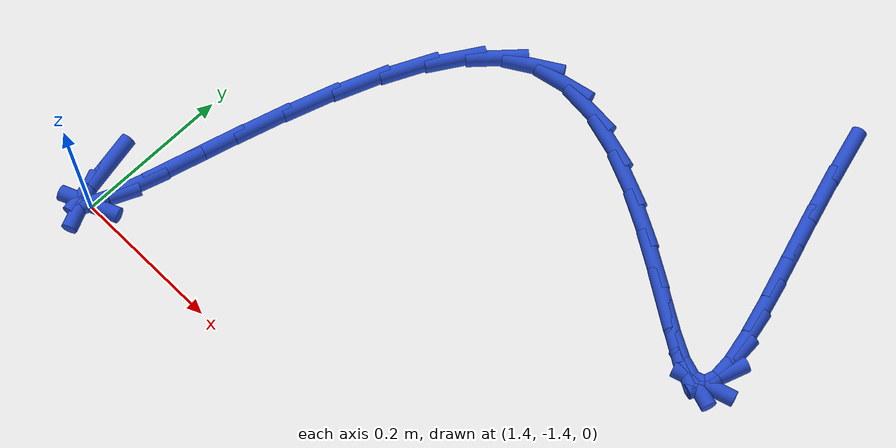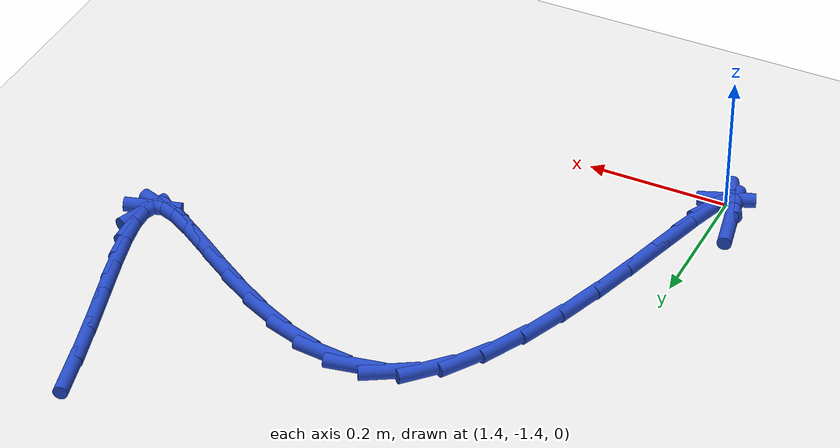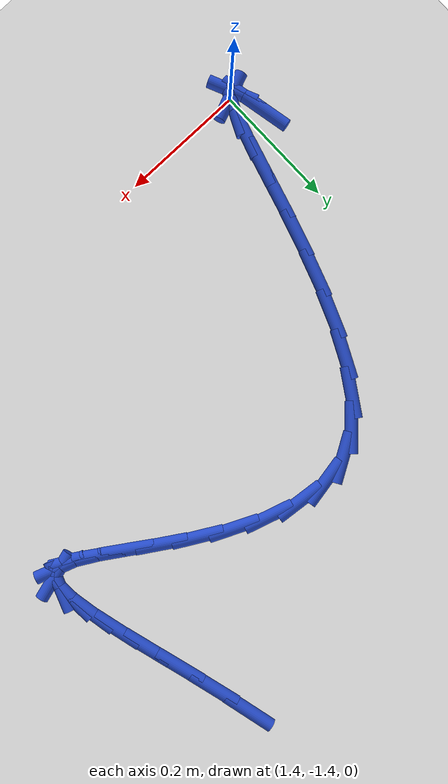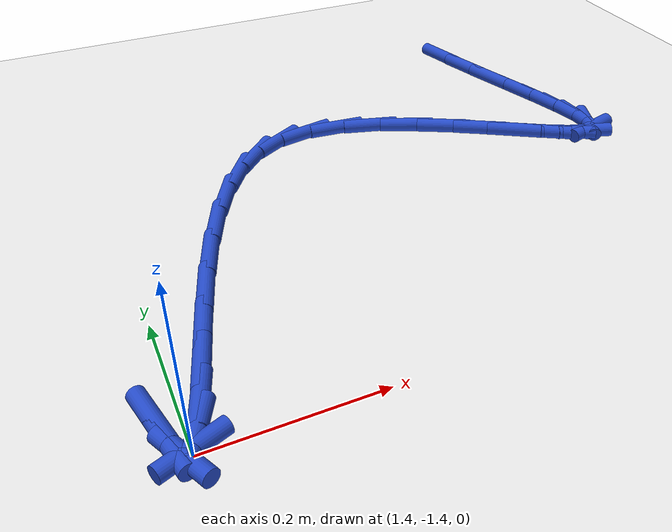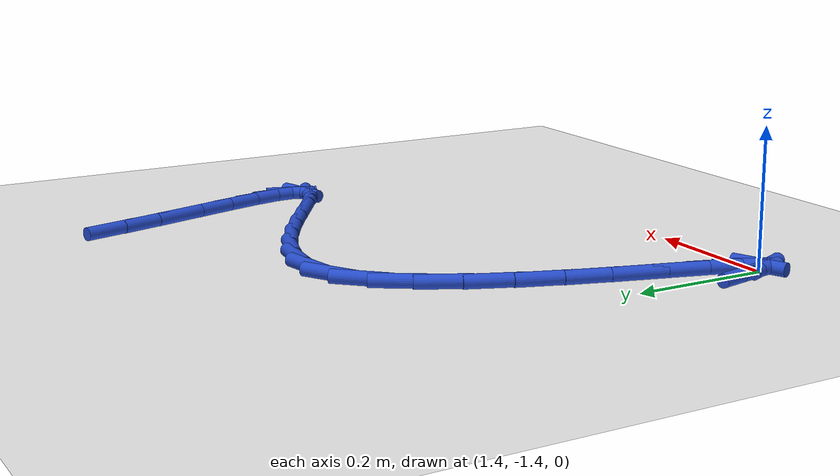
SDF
<sdf version="1.6">
 <world name="default">
  <model name="ground_plane">
   <static>1</static>
   <link name="link">
    <collision name="collision">
     <geometry><plane><normal>0 0 1</normal><size>100 100</size></plane></geometry>
     <surface><friction><ode><mu>100</mu><mu2>50</mu2></ode></friction></surface>
    </collision>
    <visual name="visual">
     <cast_shadows>0</cast_shadows>
     <geometry><plane><normal>0 0 1</normal><size>100 100</size></plane></geometry>
     <material>
      <script><uri>file://media/materials/scripts/gazebo.material</uri><name>Gazebo/WhiteGlow</name></script>
     </material>
    </visual>
   </link>
  </model>
  <model name="line">
   <link name="link_117">
    <pose>2.014001978672659 -0.7013899149735948 0.01 0 1.57 -1.321060853979882</pose>
    <collision name="collision">
     <geometry><cylinder><radius>0.01</radius><length>0.08</length></cylinder></geometry>
    </collision>
    <visual name="visual">
     <material>
      <script><name>Gazebo/Blue</name><uri>file://media/materials/scripts/gazebo.material</uri></script>
     </material>
     <geometry><cylinder><radius>0.01</radius><length>0.08</length></cylinder></geometry>
    </visual>
   </link>
   <link name="link_118">
    <pose>2.029306843724236 -0.7613948357353139 0.01 0 1.57 -1.2960009581818</pose>
    <collision name="collision">
     <geometry><cylinder><radius>0.01</radius><length>0.08</length></cylinder></geometry>
    </collision>
    <visual name="visual">
     <material>
      <script><name>Gazebo/Blue</name><uri>file://media/materials/scripts/gazebo.material</uri></script>
     </material>
     <geometry><cylinder><radius>0.01</radius><length>0.08</length></cylinder></geometry>
    </visual>
   </link>
   <link name="link_119">
    <pose>2.0456630803724347 -0.8194105478127247 0.01 0 1.57 -1.28490310162578</pose>
    <collision name="collision">
     <geometry><cylinder><radius>0.01</radius><length>0.08</length></cylinder></geometry>
    </collision>
    <visual name="visual">
     <material>
      <script><name>Gazebo/Blue</name><uri>file://media/materials/scripts/gazebo.material</uri></script>
     </material>
     <geometry><cylinder><radius>0.01</radius><length>0.08</length></cylinder></geometry>
    </visual>
   </link>
   <link name="link_120">
    <pose>2.061712500465555 -0.8740104867005821 0.01 0 1.57 -1.2893786919488013</pose>
    <collision name="collision">
     <geometry><cylinder><radius>0.01</radius><length>0.08</length></cylinder></geometry>
    </collision>
    <visual name="visual">
     <material>
      <script><name>Gazebo/Blue</name><uri>file://media/materials/scripts/gazebo.material</uri></script>
     </material>
     <geometry><cylinder><radius>0.01</radius><length>0.08</length></cylinder></geometry>
    </visual>
   </link>
   <link name="link_121">
    <pose>2.076096915851898 -0.923768087893641 0.01 0 1.57 -1.3152620814760234</pose>
    <collision name="collision">
     <geometry><cylinder><radius>0.01</radius><length>0.08</length></cylinder></geometry>
    </collision>
    <visual name="visual">
     <material>
      <script><name>Gazebo/Blue</name><uri>file://media/materials/scripts/gazebo.material</uri></script>
     </material>
     <geometry><cylinder><radius>0.01</radius><length>0.08</length></cylinder></geometry>
    </visual>
   </link>
   <link name="link_122">
    <pose>2.0874581383797657 -0.9672567868866562 0.01 0 1.57 -1.378208710090789</pose>
    <collision name="collision">
     <geometry><cylinder><radius>0.01</radius><length>0.08</length></cylinder></geometry>
    </collision>
    <visual name="visual">
     <material>
      <script><name>Gazebo/Blue</name><uri>file://media/materials/scripts/gazebo.material</uri></script>
     </material>
     <geometry><cylinder><radius>0.01</radius><length>0.08</length></cylinder></geometry>
    </visual>
   </link>
   <link name="link_123">
    <pose>2.094437979897459 -1.0030500191743832 0.01 0 1.57 -1.5243274971594625</pose>
    <collision name="collision">
     <geometry><cylinder><radius>0.01</radius><length>0.08</length></cylinder></geometry>
    </collision>
    <visual name="visual">
     <material>
      <script><name>Gazebo/Blue</name><uri>file://media/materials/scripts/gazebo.material</uri></script>
     </material>
     <geometry><cylinder><radius>0.01</radius><length>0.08</length></cylinder></geometry>
    </visual>
   </link>
   <link name="link_124">
    <pose>2.095678252253278 -1.0297212202515758 0.01 0 1.57 1.2223146314794233</pose>
    <collision name="collision">
     <geometry><cylinder><radius>0.01</radius><length>0.08</length></cylinder></geometry>
    </collision>
    <visual name="visual">
     <material>
      <script><name>Gazebo/Blue</name><uri>file://media/materials/scripts/gazebo.material</uri></script>
     </material>
     <geometry><cylinder><radius>0.01</radius><length>0.08</length></cylinder></geometry>
    </visual>
   </link>
   <link name="link_125">
    <pose>2.089820767295526 -1.0458438256129898 0.01 0 1.57 0.2825371947562926</pose>
    <collision name="collision">
     <geometry><cylinder><radius>0.01</radius><length>0.08</length></cylinder></geometry>
    </collision>
    <visual name="visual">
     <material>
      <script><name>Gazebo/Blue</name><uri>file://media/materials/scripts/gazebo.material</uri></script>
     </material>
     <geometry><cylinder><radius>0.01</radius><length>0.08</length></cylinder></geometry>
    </visual>
   </link>
   <link name="link_126">
    <pose>2.0755115149206813 -1.0499978491740327 0.01 0 1.57 -0.330169147349829</pose>
    <collision name="collision">
     <geometry><cylinder><radius>0.01</radius><length>0.08</length></cylinder></geometry>
    </collision>
    <visual name="visual">
     <material>
      <script><name>Gazebo/Blue</name><uri>file://media/materials/scripts/gazebo.material</uri></script>
     </material>
     <geometry><cylinder><radius>0.01</radius><length>0.08</length></cylinder></geometry>
    </visual>
   </link>
   <link name="link_127">
    <pose>2.052183937707787 -1.0420031648920727 0.01 0 1.57 -0.5143049928495259</pose>
    <collision name="collision">
     <geometry><cylinder><radius>0.01</radius><length>0.08</length></cylinder></geometry>
    </collision>
    <visual name="visual">
     <material>
      <script><name>Gazebo/Blue</name><uri>file://media/materials/scripts/gazebo.material</uri></script>
     </material>
     <geometry><cylinder><radius>0.01</radius><length>0.08</length></cylinder></geometry>
    </visual>
   </link>
   <link name="link_128">
    <pose>2.0209824091347968 -1.0243735417394924 0.01 0 1.57 -0.5742840028361796</pose>
    <collision name="collision">
     <geometry><cylinder><radius>0.01</radius><length>0.08</length></cylinder></geometry>
    </collision>
    <visual name="visual">
     <material>
      <script><name>Gazebo/Blue</name><uri>file://media/materials/scripts/gazebo.material</uri></script>
     </material>
     <geometry><cylinder><radius>0.01</radius><length>0.08</length></cylinder></geometry>
    </visual>
   </link>
   <link name="link_129">
    <pose>1.9832758404208122 -0.9999762878654748 0.01 0 1.57 -0.583720801522585</pose>
    <collision name="collision">
     <geometry><cylinder><radius>0.01</radius><length>0.08</length></cylinder></geometry>
    </collision>
    <visual name="visual">
     <material>
      <script><name>Gazebo/Blue</name><uri>file://media/materials/scripts/gazebo.material</uri></script>
     </material>
     <geometry><cylinder><radius>0.01</radius><length>0.08</length></cylinder></geometry>
    </visual>
   </link>
   <link name="link_130">
    <pose>1.9404331427849395 -0.9716787114192079 0.01 0 1.57 -0.5616696640385203</pose>
    <collision name="collision">
     <geometry><cylinder><radius>0.01</radius><length>0.08</length></cylinder></geometry>
    </collision>
    <visual name="visual">
     <material>
      <script><name>Gazebo/Blue</name><uri>file://media/materials/scripts/gazebo.material</uri></script>
     </material>
     <geometry><cylinder><radius>0.01</radius><length>0.08</length></cylinder></geometry>
    </visual>
   </link>
   <link name="link_131">
    <pose>1.8938232274462794 -0.9423481205498746 0.01 0 1.57 -0.5112909302550845</pose>
    <collision name="collision">
     <geometry><cylinder><radius>0.01</radius><length>0.08</length></cylinder></geometry>
    </collision>
    <visual name="visual">
     <material>
      <script><name>Gazebo/Blue</name><uri>file://media/materials/scripts/gazebo.material</uri></script>
     </material>
     <geometry><cylinder><radius>0.01</radius><length>0.08</length></cylinder></geometry>
    </visual>
   </link>
   <link name="link_132">
    <pose>1.8448150056239376 -0.9148518234066616 0.01 0 1.57 -0.42746068547423355</pose>
    <collision name="collision">
     <geometry><cylinder><radius>0.01</radius><length>0.08</length></cylinder></geometry>
    </collision>
    <visual name="visual">
     <material>
      <script><name>Gazebo/Blue</name><uri>file://media/materials/scripts/gazebo.material</uri></script>
     </material>
     <geometry><cylinder><radius>0.01</radius><length>0.08</length></cylinder></geometry>
    </visual>
   </link>
   <link name="link_133">
    <pose>1.7947773885370168 -0.8920571281387532 0.01 0 1.57 -0.29728645341490334</pose>
    <collision name="collision">
     <geometry><cylinder><radius>0.01</radius><length>0.08</length></cylinder></geometry>
    </collision>
    <visual name="visual">
     <material>
      <script><name>Gazebo/Blue</name><uri>file://media/materials/scripts/gazebo.material</uri></script>
     </material>
     <geometry><cylinder><radius>0.01</radius><length>0.08</length></cylinder></geometry>
    </visual>
   </link>
   <link name="link_134">
    <pose>1.7450792874046206 -0.8768313428953349 0.01 0 1.57 -0.09947470589339155</pose>
    <collision name="collision">
     <geometry><cylinder><radius>0.01</radius><length>0.08</length></cylinder></geometry>
    </collision>
    <visual name="visual">
     <material>
      <script><name>Gazebo/Blue</name><uri>file://media/materials/scripts/gazebo.material</uri></script>
     </material>
     <geometry><cylinder><radius>0.01</radius><length>0.08</length></cylinder></geometry>
    </visual>
   </link>
   <link name="link_135">
    <pose>1.6970896134458533 -0.8720417758255923 0.01 0 1.57 0.1873453441413568</pose>
    <collision name="collision">
     <geometry><cylinder><radius>0.01</radius><length>0.08</length></cylinder></geometry>
    </collision>
    <visual name="visual">
     <material>
      <script><name>Gazebo/Blue</name><uri>file://media/materials/scripts/gazebo.material</uri></script>
     </material>
     <geometry><cylinder><radius>0.01</radius><length>0.08</length></cylinder></geometry>
    </visual>
   </link>
   <link name="link_136">
    <pose>1.6521772778798174 -0.88055573507871 0.01 0 1.57 0.5379863226794521</pose>
    <collision name="collision">
     <geometry><cylinder><radius>0.01</radius><length>0.08</length></cylinder></geometry>
    </collision>
    <visual name="visual">
     <material>
      <script><name>Gazebo/Blue</name><uri>file://media/materials/scripts/gazebo.material</uri></script>
     </material>
     <geometry><cylinder><radius>0.01</radius><length>0.08</length></cylinder></geometry>
    </visual>
   </link>
   <link name="link_137">
    <pose>1.6115829489019469 -0.9047781964589858 0.01 0 1.57 0.8184281936716647</pose>
    <collision name="collision">
     <geometry><cylinder><radius>0.01</radius><length>0.08</length></cylinder></geometry>
    </collision>
    <visual name="visual">
     <material>
      <script><name>Gazebo/Blue</name><uri>file://media/materials/scripts/gazebo.material</uri></script>
     </material>
     <geometry><cylinder><radius>0.01</radius><length>0.08</length></cylinder></geometry>
    </visual>
   </link>
   <link name="link_138">
    <pose>1.5754975671279285 -0.9433297348766551 0.01 0 1.57 0.9997242850259659</pose>
    <collision name="collision">
     <geometry><cylinder><radius>0.01</radius><length>0.08</length></cylinder></geometry>
    </collision>
    <visual name="visual">
     <material>
      <script><name>Gazebo/Blue</name><uri>file://media/materials/scripts/gazebo.material</uri></script>
     </material>
     <geometry><cylinder><radius>0.01</radius><length>0.08</length></cylinder></geometry>
    </visual>
   </link>
   <link name="link_139">
    <pose>1.5435985086898159 -0.9929794602251958 0.01 0 1.57 1.1171217749039815</pose>
    <collision name="collision">
     <geometry><cylinder><radius>0.01</radius><length>0.08</length></cylinder></geometry>
    </collision>
    <visual name="visual">
     <material>
      <script><name>Gazebo/Blue</name><uri>file://media/materials/scripts/gazebo.material</uri></script>
     </material>
     <geometry><cylinder><radius>0.01</radius><length>0.08</length></cylinder></geometry>
    </visual>
   </link>
   <link name="link_140">
    <pose>1.5155596467552201 -1.0504838537675496 0.01 0 1.57 1.1950373694553225</pose>
    <collision name="collision">
     <geometry><cylinder><radius>0.01</radius><length>0.08</length></cylinder></geometry>
    </collision>
    <visual name="visual">
     <material>
      <script><name>Gazebo/Blue</name><uri>file://media/materials/scripts/gazebo.material</uri></script>
     </material>
     <geometry><cylinder><radius>0.01</radius><length>0.08</length></cylinder></geometry>
    </visual>
   </link>
   <link name="link_141">
    <pose>1.4910548544917523 -1.1125993967666552 0.01 0 1.57 1.2471218950176641</pose>
    <collision name="collision">
     <geometry><cylinder><radius>0.01</radius><length>0.08</length></cylinder></geometry>
    </collision>
    <visual name="visual">
     <material>
      <script><name>Gazebo/Blue</name><uri>file://media/materials/scripts/gazebo.material</uri></script>
     </material>
     <geometry><cylinder><radius>0.01</radius><length>0.08</length></cylinder></geometry>
    </visual>
   </link>
   <link name="link_142">
    <pose>1.4697580050670223 -1.1760825704854565 0.01 0 1.57 1.2803398372980703</pose>
    <collision name="collision">
     <geometry><cylinder><radius>0.01</radius><length>0.08</length></cylinder></geometry>
    </collision>
    <visual name="visual">
     <material>
      <script><name>Gazebo/Blue</name><uri>file://media/materials/scripts/gazebo.material</uri></script>
     </material>
     <geometry><cylinder><radius>0.01</radius><length>0.08</length></cylinder></geometry>
    </visual>
   </link>
   <link name="link_143">
    <pose>1.451342971648641 -1.2376898561868928 0.01 0 1.57 1.2970861763474002</pose>
    <collision name="collision">
     <geometry><cylinder><radius>0.01</radius><length>0.08</length></cylinder></geometry>
    </collision>
    <visual name="visual">
     <material>
      <script><name>Gazebo/Blue</name><uri>file://media/materials/scripts/gazebo.material</uri></script>
     </material>
     <geometry><cylinder><radius>0.01</radius><length>0.08</length></cylinder></geometry>
    </visual>
   </link>
   <link name="link_144">
    <pose>1.4354836274042184 -1.294177735133905 0.01 0 1.57 1.294807442239536</pose>
    <collision name="collision">
     <geometry><cylinder><radius>0.01</radius><length>0.08</length></cylinder></geometry>
    </collision>
    <visual name="visual">
     <material>
      <script><name>Gazebo/Blue</name><uri>file://media/materials/scripts/gazebo.material</uri></script>
     </material>
     <geometry><cylinder><radius>0.01</radius><length>0.08</length></cylinder></geometry>
    </visual>
   </link>
   <link name="link_145">
    <pose>1.421853845501367 -1.3423026885894347 0.01 0 1.57 1.2600895957158929</pose>
    <collision name="collision">
     <geometry><cylinder><radius>0.01</radius><length>0.08</length></cylinder></geometry>
    </collision>
    <visual name="visual">
     <material>
      <script><name>Gazebo/Blue</name><uri>file://media/materials/scripts/gazebo.material</uri></script>
     </material>
     <geometry><cylinder><radius>0.01</radius><length>0.08</length></cylinder></geometry>
    </visual>
   </link>
   <link name="link_146">
    <pose>1.4101274991076953 -1.3788211978164209 0.01 0 1.57 1.1327660324013615</pose>
    <collision name="collision">
     <geometry><cylinder><radius>0.01</radius><length>0.08</length></cylinder></geometry>
    </collision>
    <visual name="visual">
     <material>
      <script><name>Gazebo/Blue</name><uri>file://media/materials/scripts/gazebo.material</uri></script>
     </material>
     <geometry><cylinder><radius>0.01</radius><length>0.08</length></cylinder></geometry>
    </visual>
   </link>
   <link name="link_147">
    <pose>1.399978461390816 -1.400489744077806 0.01 0 1.57 0.382048048249575</pose>
    <collision name="collision">
     <geometry><cylinder><radius>0.01</radius><length>0.08</length></cylinder></geometry>
    </collision>
    <visual name="visual">
     <material>
      <script><name>Gazebo/Blue</name><uri>file://media/materials/scripts/gazebo.material</uri></script>
     </material>
     <geometry><cylinder><radius>0.01</radius><length>0.08</length></cylinder></geometry>
    </visual>
   </link>
   <link name="link_148">
    <pose>1.3910806055183387 -1.4040648086365304 0.01 0 1.57 -1.148805121904294</pose>
    <collision name="collision">
     <geometry><cylinder><radius>0.01</radius><length>0.08</length></cylinder></geometry>
    </collision>
    <visual name="visual">
     <material>
      <script><name>Gazebo/Blue</name><uri>file://media/materials/scripts/gazebo.material</uri></script>
     </material>
     <geometry><cylinder><radius>0.01</radius><length>0.08</length></cylinder></geometry>
    </visual>
   </link>
   <link name="link_149">
    <pose>1.3831073885061176 -1.3863056227646475 0.01 0 1.57 -1.3697308857672874</pose>
    <collision name="collision">
     <geometry><cylinder><radius>0.01</radius><length>0.08</length></cylinder></geometry>
    </collision>
    <visual name="visual">
     <material>
      <script><name>Gazebo/Blue</name><uri>file://media/materials/scripts/gazebo.material</uri></script>
     </material>
     <geometry><cylinder><radius>0.01</radius><length>0.08</length></cylinder></geometry>
    </visual>
   </link>
   <link name="link_150">
    <pose>1.37519818956139 -1.3475007043861003 0.01 0 1.57 -1.3643247472855777</pose>
    <collision name="collision">
     <geometry><cylinder><radius>0.01</radius><length>0.08</length></cylinder></geometry>
    </collision>
    <visual name="visual">
     <material>
      <script><name>Gazebo/Blue</name><uri>file://media/materials/scripts/gazebo.material</uri></script>
     </material>
     <geometry><cylinder><radius>0.01</radius><length>0.08</length></cylinder></geometry>
    </visual>
   </link>
  </model>
 </world>
</sdf>
